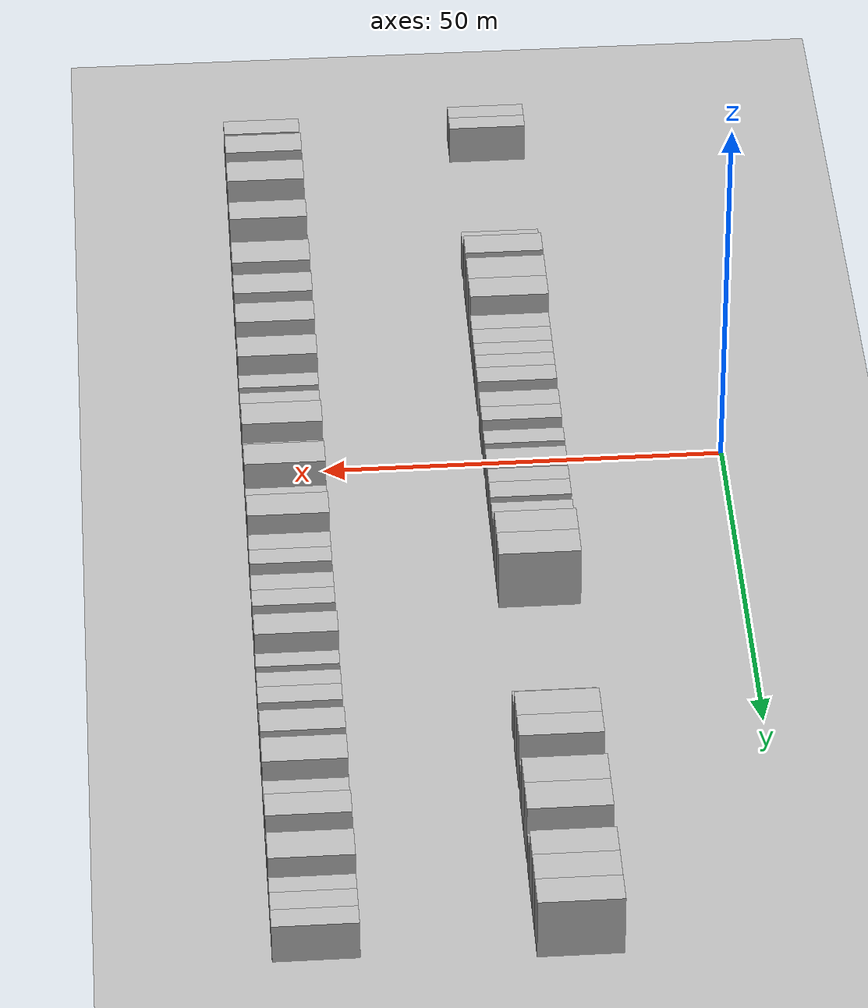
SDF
<sdf version="1.6">
 <world name="default">
  <include><name>ground_plane_1</name><uri>model://HANNAS_ground_plane</uri></include>
  <include>
   <name>ground_plane_2</name>
   <uri>model://HANNAS_ground_plane</uri>
   <pose>100 0 0  0 0 0</pose>
  </include>
  <model name="building_33">
   <static>1</static>
   <pose>25.0000 -66.7747 0 0.000000 0.000000 0.000000</pose>
   <link name="link">
    <pose>0 0 3.00 0 0 0</pose>
    <collision name="collision"><geometry><box><size>10.0000 2.4610 6.0000</size></box></geometry></collision>
    <visual name="visual">
     <cast_shadows>0</cast_shadows>
     <geometry><box><size>10.0000 2.4610 6.0000</size></box></geometry>
     <material>
      <script>
       <uri>model://HANNAS_wall/materials/scripts</uri>
       <uri>model://HANNAS_wall/materials/textures</uri>
       <name>vrc/HANNAS_wall</name>
      </script>
     </material>
    </visual>
   </link>
  </model>
  <model name="building_34">
   <static>1</static>
   <pose>25.0000 -64.3148 0 0.000000 0.000000 0.000000</pose>
   <link name="link">
    <pose>0 0 3.00 0 0 0</pose>
    <collision name="collision"><geometry><box><size>10.0000 2.4590 6.0000</size></box></geometry></collision>
    <visual name="visual">
     <cast_shadows>0</cast_shadows>
     <geometry><box><size>10.0000 2.4590 6.0000</size></box></geometry>
     <material>
      <script>
       <uri>model://HANNAS_wall/materials/scripts</uri>
       <uri>model://HANNAS_wall/materials/textures</uri>
       <name>vrc/HANNAS_wall</name>
      </script>
     </material>
    </visual>
   </link>
  </model>
  <model name="building_35">
   <static>1</static>
   <pose>25.0000 -38.9038 0 0.000000 0.000000 0.000000</pose>
   <link name="link">
    <pose>0 0 3.00 0 0 0</pose>
    <collision name="collision"><geometry><box><size>10.0000 2.7877 6.0000</size></box></geometry></collision>
    <visual name="visual">
     <cast_shadows>0</cast_shadows>
     <geometry><box><size>10.0000 2.7877 6.0000</size></box></geometry>
     <material>
      <script>
       <uri>model://HANNAS_wall/materials/scripts</uri>
       <uri>model://HANNAS_wall/materials/textures</uri>
       <name>vrc/HANNAS_wall</name>
      </script>
     </material>
    </visual>
   </link>
  </model>
  <model name="building_36">
   <static>1</static>
   <pose>25.0000 -33.6830 0 0.000000 0.000000 0.000000</pose>
   <link name="link">
    <pose>0 0 4.50 0 0 0</pose>
    <collision name="collision"><geometry><box><size>10.0000 3.6540 9.0000</size></box></geometry></collision>
    <visual name="visual">
     <cast_shadows>0</cast_shadows>
     <geometry><box><size>10.0000 3.6540 9.0000</size></box></geometry>
     <material>
      <script>
       <uri>model://HANNAS_wall/materials/scripts</uri>
       <uri>model://HANNAS_wall/materials/textures</uri>
       <name>vrc/HANNAS_wall</name>
      </script>
     </material>
    </visual>
   </link>
  </model>
  <model name="building_37">
   <static>1</static>
   <pose>25.0000 -28.6981 0 0.000000 0.000000 0.000000</pose>
   <link name="link">
    <pose>0 0 4.50 0 0 0</pose>
    <collision name="collision"><geometry><box><size>10.0000 4.3158 9.0000</size></box></geometry></collision>
    <visual name="visual">
     <cast_shadows>0</cast_shadows>
     <geometry><box><size>10.0000 4.3158 9.0000</size></box></geometry>
     <material>
      <script>
       <uri>model://HANNAS_wall/materials/scripts</uri>
       <uri>model://HANNAS_wall/materials/textures</uri>
       <name>vrc/HANNAS_wall</name>
      </script>
     </material>
    </visual>
   </link>
  </model>
  <model name="building_38">
   <static>1</static>
   <pose>25.0000 -24.6062 0 0.000000 0.000000 0.000000</pose>
   <link name="link">
    <pose>0 0 4.50 0 0 0</pose>
    <collision name="collision"><geometry><box><size>10.0000 3.8679 9.0000</size></box></geometry></collision>
    <visual name="visual">
     <cast_shadows>0</cast_shadows>
     <geometry><box><size>10.0000 3.8679 9.0000</size></box></geometry>
     <material>
      <script>
       <uri>model://HANNAS_wall/materials/scripts</uri>
       <uri>model://HANNAS_wall/materials/textures</uri>
       <name>vrc/HANNAS_wall</name>
      </script>
     </material>
    </visual>
   </link>
  </model>
  <model name="building_39">
   <static>1</static>
   <pose>25.0000 -21.2416 0 0.000000 0.000000 0.000000</pose>
   <link name="link">
    <pose>0 0 3.00 0 0 0</pose>
    <collision name="collision"><geometry><box><size>10.0000 2.8612 6.0000</size></box></geometry></collision>
    <visual name="visual">
     <cast_shadows>0</cast_shadows>
     <geometry><box><size>10.0000 2.8612 6.0000</size></box></geometry>
     <material>
      <script>
       <uri>model://HANNAS_wall/materials/scripts</uri>
       <uri>model://HANNAS_wall/materials/textures</uri>
       <name>vrc/HANNAS_wall</name>
      </script>
     </material>
    </visual>
   </link>
  </model>
  <model name="building_40">
   <static>1</static>
   <pose>25.0000 -18.3810 0 0.000000 0.000000 0.000000</pose>
   <link name="link">
    <pose>0 0 3.00 0 0 0</pose>
    <collision name="collision"><geometry><box><size>10.0000 2.8601 6.0000</size></box></geometry></collision>
    <visual name="visual">
     <cast_shadows>0</cast_shadows>
     <geometry><box><size>10.0000 2.8601 6.0000</size></box></geometry>
     <material>
      <script>
       <uri>model://HANNAS_wall/materials/scripts</uri>
       <uri>model://HANNAS_wall/materials/textures</uri>
       <name>vrc/HANNAS_wall</name>
      </script>
     </material>
    </visual>
   </link>
  </model>
  <model name="building_41">
   <static>1</static>
   <pose>25.0000 -15.7425 0 0.000000 0.000000 0.000000</pose>
   <link name="link">
    <pose>0 0 3.00 0 0 0</pose>
    <collision name="collision"><geometry><box><size>10.0000 2.4168 6.0000</size></box></geometry></collision>
    <visual name="visual">
     <cast_shadows>0</cast_shadows>
     <geometry><box><size>10.0000 2.4168 6.0000</size></box></geometry>
     <material>
      <script>
       <uri>model://HANNAS_wall/materials/scripts</uri>
       <uri>model://HANNAS_wall/materials/textures</uri>
       <name>vrc/HANNAS_wall</name>
      </script>
     </material>
    </visual>
   </link>
  </model>
  <model name="building_42">
   <static>1</static>
   <pose>25.0000 -13.2547 0 0.000000 0.000000 0.000000</pose>
   <link name="link">
    <pose>0 0 3.00 0 0 0</pose>
    <collision name="collision"><geometry><box><size>10.0000 2.5588 6.0000</size></box></geometry></collision>
    <visual name="visual">
     <cast_shadows>0</cast_shadows>
     <geometry><box><size>10.0000 2.5588 6.0000</size></box></geometry>
     <material>
      <script>
       <uri>model://HANNAS_wall/materials/scripts</uri>
       <uri>model://HANNAS_wall/materials/textures</uri>
       <name>vrc/HANNAS_wall</name>
      </script>
     </material>
    </visual>
   </link>
  </model>
  <model name="building_43">
   <static>1</static>
   <pose>25.0000 -10.5216 0 0.000000 0.000000 0.000000</pose>
   <link name="link">
    <pose>0 0 3.00 0 0 0</pose>
    <collision name="collision"><geometry><box><size>10.0000 2.9074 6.0000</size></box></geometry></collision>
    <visual name="visual">
     <cast_shadows>0</cast_shadows>
     <geometry><box><size>10.0000 2.9074 6.0000</size></box></geometry>
     <material>
      <script>
       <uri>model://HANNAS_wall/materials/scripts</uri>
       <uri>model://HANNAS_wall/materials/textures</uri>
       <name>vrc/HANNAS_wall</name>
      </script>
     </material>
    </visual>
   </link>
  </model>
  <model name="building_44">
   <static>1</static>
   <pose>25.0000 -5.5782 0 0.000000 0.000000 0.000000</pose>
   <link name="link">
    <pose>0 0 3.00 0 0 0</pose>
    <collision name="collision"><geometry><box><size>10.0000 2.9794 6.0000</size></box></geometry></collision>
    <visual name="visual">
     <cast_shadows>0</cast_shadows>
     <geometry><box><size>10.0000 2.9794 6.0000</size></box></geometry>
     <material>
      <script>
       <uri>model://HANNAS_wall/materials/scripts</uri>
       <uri>model://HANNAS_wall/materials/textures</uri>
       <name>vrc/HANNAS_wall</name>
      </script>
     </material>
    </visual>
   </link>
  </model>
  <model name="building_45">
   <static>1</static>
   <pose>25.0000 -2.7272 0 0.000000 0.000000 0.000000</pose>
   <link name="link">
    <pose>0 0 3.00 0 0 0</pose>
    <collision name="collision"><geometry><box><size>10.0000 2.7225 6.0000</size></box></geometry></collision>
    <visual name="visual">
     <cast_shadows>0</cast_shadows>
     <geometry><box><size>10.0000 2.7225 6.0000</size></box></geometry>
     <material>
      <script>
       <uri>model://HANNAS_wall/materials/scripts</uri>
       <uri>model://HANNAS_wall/materials/textures</uri>
       <name>vrc/HANNAS_wall</name>
      </script>
     </material>
    </visual>
   </link>
  </model>
  <model name="building_46">
   <static>1</static>
   <pose>25.0000 1.9381 0 0.000000 0.000000 0.000000</pose>
   <link name="link">
    <pose>0 0 3.00 0 0 0</pose>
    <collision name="collision"><geometry><box><size>10.0000 2.6081 6.0000</size></box></geometry></collision>
    <visual name="visual">
     <cast_shadows>0</cast_shadows>
     <geometry><box><size>10.0000 2.6081 6.0000</size></box></geometry>
     <material>
      <script>
       <uri>model://HANNAS_wall/materials/scripts</uri>
       <uri>model://HANNAS_wall/materials/textures</uri>
       <name>vrc/HANNAS_wall</name>
      </script>
     </material>
    </visual>
   </link>
  </model>
  <model name="building_47">
   <static>1</static>
   <pose>25.0000 5.6849 0 0.000000 0.000000 0.000000</pose>
   <link name="link">
    <pose>0 0 3.00 0 0 0</pose>
    <collision name="collision"><geometry><box><size>10.0000 2.8855 6.0000</size></box></geometry></collision>
    <visual name="visual">
     <cast_shadows>0</cast_shadows>
     <geometry><box><size>10.0000 2.8855 6.0000</size></box></geometry>
     <material>
      <script>
       <uri>model://HANNAS_wall/materials/scripts</uri>
       <uri>model://HANNAS_wall/materials/textures</uri>
       <name>vrc/HANNAS_wall</name>
      </script>
     </material>
    </visual>
   </link>
  </model>
  <model name="building_48">
   <static>1</static>
   <pose>25.0000 9.4006 0 0.000000 0.000000 0.000000</pose>
   <link name="link">
    <pose>0 0 3.00 0 0 0</pose>
    <collision name="collision"><geometry><box><size>10.0000 2.5460 6.0000</size></box></geometry></collision>
    <visual name="visual">
     <cast_shadows>0</cast_shadows>
     <geometry><box><size>10.0000 2.5460 6.0000</size></box></geometry>
     <material>
      <script>
       <uri>model://HANNAS_wall/materials/scripts</uri>
       <uri>model://HANNAS_wall/materials/textures</uri>
       <name>vrc/HANNAS_wall</name>
      </script>
     </material>
    </visual>
   </link>
  </model>
  <model name="building_49">
   <static>1</static>
   <pose>25.0000 12.1602 0 0.000000 0.000000 0.000000</pose>
   <link name="link">
    <pose>0 0 3.00 0 0 0</pose>
    <collision name="collision"><geometry><box><size>10.0000 2.9734 6.0000</size></box></geometry></collision>
    <visual name="visual">
     <cast_shadows>0</cast_shadows>
     <geometry><box><size>10.0000 2.9734 6.0000</size></box></geometry>
     <material>
      <script>
       <uri>model://HANNAS_wall/materials/scripts</uri>
       <uri>model://HANNAS_wall/materials/textures</uri>
       <name>vrc/HANNAS_wall</name>
      </script>
     </material>
    </visual>
   </link>
  </model>
  <model name="building_50">
   <static>1</static>
   <pose>25.0000 16.0455 0 0.000000 0.000000 0.000000</pose>
   <link name="link">
    <pose>0 0 3.00 0 0 0</pose>
    <collision name="collision"><geometry><box><size>10.0000 2.7973 6.0000</size></box></geometry></collision>
    <visual name="visual">
     <cast_shadows>0</cast_shadows>
     <geometry><box><size>10.0000 2.7973 6.0000</size></box></geometry>
     <material>
      <script>
       <uri>model://HANNAS_wall/materials/scripts</uri>
       <uri>model://HANNAS_wall/materials/textures</uri>
       <name>vrc/HANNAS_wall</name>
      </script>
     </material>
    </visual>
   </link>
  </model>
  <model name="building_51">
   <static>1</static>
   <pose>25.0000 18.7045 0 0.000000 0.000000 0.000000</pose>
   <link name="link">
    <pose>0 0 3.00 0 0 0</pose>
    <collision name="collision"><geometry><box><size>10.0000 2.5208 6.0000</size></box></geometry></collision>
    <visual name="visual">
     <cast_shadows>0</cast_shadows>
     <geometry><box><size>10.0000 2.5208 6.0000</size></box></geometry>
     <material>
      <script>
       <uri>model://HANNAS_wall/materials/scripts</uri>
       <uri>model://HANNAS_wall/materials/textures</uri>
       <name>vrc/HANNAS_wall</name>
      </script>
     </material>
    </visual>
   </link>
  </model>
  <model name="building_52">
   <static>1</static>
   <pose>25.0000 21.9266 0 0.000000 0.000000 0.000000</pose>
   <link name="link">
    <pose>0 0 4.50 0 0 0</pose>
    <collision name="collision"><geometry><box><size>10.0000 3.9233 9.0000</size></box></geometry></collision>
    <visual name="visual">
     <cast_shadows>0</cast_shadows>
     <geometry><box><size>10.0000 3.9233 9.0000</size></box></geometry>
     <material>
      <script>
       <uri>model://HANNAS_wall/materials/scripts</uri>
       <uri>model://HANNAS_wall/materials/textures</uri>
       <name>vrc/HANNAS_wall</name>
      </script>
     </material>
    </visual>
   </link>
  </model>
  <model name="building_53">
   <static>1</static>
   <pose>25.0000 25.9322 0 0.000000 0.000000 0.000000</pose>
   <link name="link">
    <pose>0 0 4.50 0 0 0</pose>
    <collision name="collision"><geometry><box><size>10.0000 4.0879 9.0000</size></box></geometry></collision>
    <visual name="visual">
     <cast_shadows>0</cast_shadows>
     <geometry><box><size>10.0000 4.0879 9.0000</size></box></geometry>
     <material>
      <script>
       <uri>model://HANNAS_wall/materials/scripts</uri>
       <uri>model://HANNAS_wall/materials/textures</uri>
       <name>vrc/HANNAS_wall</name>
      </script>
     </material>
    </visual>
   </link>
  </model>
  <model name="building_54">
   <static>1</static>
   <pose>25.0000 50.6213 0 0.000000 0.000000 0.000000</pose>
   <link name="link">
    <pose>0 0 3.00 0 0 0</pose>
    <collision name="collision"><geometry><box><size>10.0000 2.4302 6.0000</size></box></geometry></collision>
    <visual name="visual">
     <cast_shadows>0</cast_shadows>
     <geometry><box><size>10.0000 2.4302 6.0000</size></box></geometry>
     <material>
      <script>
       <uri>model://HANNAS_wall/materials/scripts</uri>
       <uri>model://HANNAS_wall/materials/textures</uri>
       <name>vrc/HANNAS_wall</name>
      </script>
     </material>
    </visual>
   </link>
  </model>
  <model name="building_55">
   <static>1</static>
   <pose>25.0000 54.8853 0 0.000000 0.000000 0.000000</pose>
   <link name="link">
    <pose>0 0 4.50 0 0 0</pose>
    <collision name="collision"><geometry><box><size>10.0000 4.0978 9.0000</size></box></geometry></collision>
    <visual name="visual">
     <cast_shadows>0</cast_shadows>
     <geometry><box><size>10.0000 4.0978 9.0000</size></box></geometry>
     <material>
      <script>
       <uri>model://HANNAS_wall/materials/scripts</uri>
       <uri>model://HANNAS_wall/materials/textures</uri>
       <name>vrc/HANNAS_wall</name>
      </script>
     </material>
    </visual>
   </link>
  </model>
  <model name="building_56">
   <static>1</static>
   <pose>25.0000 58.7372 0 0.000000 0.000000 0.000000</pose>
   <link name="link">
    <pose>0 0 4.50 0 0 0</pose>
    <collision name="collision"><geometry><box><size>10.0000 3.6061 9.0000</size></box></geometry></collision>
    <visual name="visual">
     <cast_shadows>0</cast_shadows>
     <geometry><box><size>10.0000 3.6061 9.0000</size></box></geometry>
     <material>
      <script>
       <uri>model://HANNAS_wall/materials/scripts</uri>
       <uri>model://HANNAS_wall/materials/textures</uri>
       <name>vrc/HANNAS_wall</name>
      </script>
     </material>
    </visual>
   </link>
  </model>
  <model name="building_57">
   <static>1</static>
   <pose>25.0000 62.9265 0 0.000000 0.000000 0.000000</pose>
   <link name="link">
    <pose>0 0 3.00 0 0 0</pose>
    <collision name="collision"><geometry><box><size>10.0000 2.7724 6.0000</size></box></geometry></collision>
    <visual name="visual">
     <cast_shadows>0</cast_shadows>
     <geometry><box><size>10.0000 2.7724 6.0000</size></box></geometry>
     <material>
      <script>
       <uri>model://HANNAS_wall/materials/scripts</uri>
       <uri>model://HANNAS_wall/materials/textures</uri>
       <name>vrc/HANNAS_wall</name>
      </script>
     </material>
    </visual>
   </link>
  </model>
  <model name="building_58">
   <static>1</static>
   <pose>25.0000 66.4284 0 0.000000 0.000000 0.000000</pose>
   <link name="link">
    <pose>0 0 4.50 0 0 0</pose>
    <collision name="collision"><geometry><box><size>10.0000 4.2313 9.0000</size></box></geometry></collision>
    <visual name="visual">
     <cast_shadows>0</cast_shadows>
     <geometry><box><size>10.0000 4.2313 9.0000</size></box></geometry>
     <material>
      <script>
       <uri>model://HANNAS_wall/materials/scripts</uri>
       <uri>model://HANNAS_wall/materials/textures</uri>
       <name>vrc/HANNAS_wall</name>
      </script>
     </material>
    </visual>
   </link>
  </model>
  <model name="building_59">
   <static>1</static>
   <pose>25.0000 70.7863 0 0.000000 0.000000 0.000000</pose>
   <link name="link">
    <pose>0 0 4.50 0 0 0</pose>
    <collision name="collision"><geometry><box><size>10.0000 4.4846 9.0000</size></box></geometry></collision>
    <visual name="visual">
     <cast_shadows>0</cast_shadows>
     <geometry><box><size>10.0000 4.4846 9.0000</size></box></geometry>
     <material>
      <script>
       <uri>model://HANNAS_wall/materials/scripts</uri>
       <uri>model://HANNAS_wall/materials/textures</uri>
       <name>vrc/HANNAS_wall</name>
      </script>
     </material>
    </visual>
   </link>
  </model>
  <model name="building_60">
   <static>1</static>
   <pose>25.0000 75.3295 0 0.000000 0.000000 0.000000</pose>
   <link name="link">
    <pose>0 0 3.00 0 0 0</pose>
    <collision name="collision"><geometry><box><size>10.0000 2.6019 6.0000</size></box></geometry></collision>
    <visual name="visual">
     <cast_shadows>0</cast_shadows>
     <geometry><box><size>10.0000 2.6019 6.0000</size></box></geometry>
     <material>
      <script>
       <uri>model://HANNAS_wall/materials/scripts</uri>
       <uri>model://HANNAS_wall/materials/textures</uri>
       <name>vrc/HANNAS_wall</name>
      </script>
     </material>
    </visual>
   </link>
  </model>
  <model name="building_61">
   <static>1</static>
   <pose>25.0000 78.6148 0 0.000000 0.000000 0.000000</pose>
   <link name="link">
    <pose>0 0 4.50 0 0 0</pose>
    <collision name="collision"><geometry><box><size>10.0000 3.9686 9.0000</size></box></geometry></collision>
    <visual name="visual">
     <cast_shadows>0</cast_shadows>
     <geometry><box><size>10.0000 3.9686 9.0000</size></box></geometry>
     <material>
      <script>
       <uri>model://HANNAS_wall/materials/scripts</uri>
       <uri>model://HANNAS_wall/materials/textures</uri>
       <name>vrc/HANNAS_wall</name>
      </script>
     </material>
    </visual>
   </link>
  </model>
  <model name="building_62">
   <static>1</static>
   <pose>25.0000 82.6058 0 0.000000 0.000000 0.000000</pose>
   <link name="link">
    <pose>0 0 4.50 0 0 0</pose>
    <collision name="collision"><geometry><box><size>10.0000 4.0133 9.0000</size></box></geometry></collision>
    <visual name="visual">
     <cast_shadows>0</cast_shadows>
     <geometry><box><size>10.0000 4.0133 9.0000</size></box></geometry>
     <material>
      <script>
       <uri>model://HANNAS_wall/materials/scripts</uri>
       <uri>model://HANNAS_wall/materials/textures</uri>
       <name>vrc/HANNAS_wall</name>
      </script>
     </material>
    </visual>
   </link>
  </model>
  <model name="building_63">
   <static>1</static>
   <pose>25.0000 86.5695 0 0.000000 0.000000 0.000000</pose>
   <link name="link">
    <pose>0 0 4.50 0 0 0</pose>
    <collision name="collision"><geometry><box><size>10.0000 3.9142 9.0000</size></box></geometry></collision>
    <visual name="visual">
     <cast_shadows>0</cast_shadows>
     <geometry><box><size>10.0000 3.9142 9.0000</size></box></geometry>
     <material>
      <script>
       <uri>model://HANNAS_wall/materials/scripts</uri>
       <uri>model://HANNAS_wall/materials/textures</uri>
       <name>vrc/HANNAS_wall</name>
      </script>
     </material>
    </visual>
   </link>
  </model>
  <model name="building_140">
   <static>1</static>
   <pose>55.0000 -65.3273 0 0.000000 0.000000 0.000000</pose>
   <link name="link">
    <pose>0 0 3.00 0 0 0</pose>
    <collision name="collision"><geometry><box><size>10.0000 2.9412 6.0000</size></box></geometry></collision>
    <visual name="visual">
     <cast_shadows>0</cast_shadows>
     <geometry><box><size>10.0000 2.9412 6.0000</size></box></geometry>
     <material>
      <script>
       <uri>model://HANNAS_wall/materials/scripts</uri>
       <uri>model://HANNAS_wall/materials/textures</uri>
       <name>vrc/HANNAS_wall</name>
      </script>
     </material>
    </visual>
   </link>
  </model>
  <model name="building_141">
   <static>1</static>
   <pose>55.0000 -60.6528 0 0.000000 0.000000 0.000000</pose>
   <link name="link">
    <pose>0 0 3.00 0 0 0</pose>
    <collision name="collision"><geometry><box><size>10.0000 2.4078 6.0000</size></box></geometry></collision>
    <visual name="visual">
     <cast_shadows>0</cast_shadows>
     <geometry><box><size>10.0000 2.4078 6.0000</size></box></geometry>
     <material>
      <script>
       <uri>model://HANNAS_wall/materials/scripts</uri>
       <uri>model://HANNAS_wall/materials/textures</uri>
       <name>vrc/HANNAS_wall</name>
      </script>
     </material>
    </visual>
   </link>
  </model>
  <model name="building_142">
   <static>1</static>
   <pose>55.0000 -57.5523 0 0.000000 0.000000 0.000000</pose>
   <link name="link">
    <pose>0 0 4.50 0 0 0</pose>
    <collision name="collision"><geometry><box><size>10.0000 3.7933 9.0000</size></box></geometry></collision>
    <visual name="visual">
     <cast_shadows>0</cast_shadows>
     <geometry><box><size>10.0000 3.7933 9.0000</size></box></geometry>
     <material>
      <script>
       <uri>model://HANNAS_wall/materials/scripts</uri>
       <uri>model://HANNAS_wall/materials/textures</uri>
       <name>vrc/HANNAS_wall</name>
      </script>
     </material>
    </visual>
   </link>
  </model>
  <model name="building_143">
   <static>1</static>
   <pose>55.0000 -51.5220 0 0.000000 0.000000 0.000000</pose>
   <link name="link">
    <pose>0 0 4.50 0 0 0</pose>
    <collision name="collision"><geometry><box><size>10.0000 4.2673 9.0000</size></box></geometry></collision>
    <visual name="visual">
     <cast_shadows>0</cast_shadows>
     <geometry><box><size>10.0000 4.2673 9.0000</size></box></geometry>
     <material>
      <script>
       <uri>model://HANNAS_wall/materials/scripts</uri>
       <uri>model://HANNAS_wall/materials/textures</uri>
       <name>vrc/HANNAS_wall</name>
      </script>
     </material>
    </visual>
   </link>
  </model>
  <model name="building_144">
   <static>1</static>
   <pose>55.0000 -46.1477 0 0.000000 0.000000 0.000000</pose>
   <link name="link">
    <pose>0 0 3.00 0 0 0</pose>
    <collision name="collision"><geometry><box><size>10.0000 2.4814 6.0000</size></box></geometry></collision>
    <visual name="visual">
     <cast_shadows>0</cast_shadows>
     <geometry><box><size>10.0000 2.4814 6.0000</size></box></geometry>
     <material>
      <script>
       <uri>model://HANNAS_wall/materials/scripts</uri>
       <uri>model://HANNAS_wall/materials/textures</uri>
       <name>vrc/HANNAS_wall</name>
      </script>
     </material>
    </visual>
   </link>
  </model>
  <model name="building_145">
   <static>1</static>
   <pose>55.0000 -43.0397 0 0.000000 0.000000 0.000000</pose>
   <link name="link">
    <pose>0 0 4.50 0 0 0</pose>
    <collision name="collision"><geometry><box><size>10.0000 3.7345 9.0000</size></box></geometry></collision>
    <visual name="visual">
     <cast_shadows>0</cast_shadows>
     <geometry><box><size>10.0000 3.7345 9.0000</size></box></geometry>
     <material>
      <script>
       <uri>model://HANNAS_wall/materials/scripts</uri>
       <uri>model://HANNAS_wall/materials/textures</uri>
       <name>vrc/HANNAS_wall</name>
      </script>
     </material>
    </visual>
   </link>
  </model>
  <model name="building_146">
   <static>1</static>
   <pose>55.0000 -37.7291 0 0.000000 0.000000 0.000000</pose>
   <link name="link">
    <pose>0 0 3.00 0 0 0</pose>
    <collision name="collision"><geometry><box><size>10.0000 2.8868 6.0000</size></box></geometry></collision>
    <visual name="visual">
     <cast_shadows>0</cast_shadows>
     <geometry><box><size>10.0000 2.8868 6.0000</size></box></geometry>
     <material>
      <script>
       <uri>model://HANNAS_wall/materials/scripts</uri>
       <uri>model://HANNAS_wall/materials/textures</uri>
       <name>vrc/HANNAS_wall</name>
      </script>
     </material>
    </visual>
   </link>
  </model>
  <model name="building_147">
   <static>1</static>
   <pose>55.0000 -34.0824 0 0.000000 0.000000 0.000000</pose>
   <link name="link">
    <pose>0 0 4.50 0 0 0</pose>
    <collision name="collision"><geometry><box><size>10.0000 4.4066 9.0000</size></box></geometry></collision>
    <visual name="visual">
     <cast_shadows>0</cast_shadows>
     <geometry><box><size>10.0000 4.4066 9.0000</size></box></geometry>
     <material>
      <script>
       <uri>model://HANNAS_wall/materials/scripts</uri>
       <uri>model://HANNAS_wall/materials/textures</uri>
       <name>vrc/HANNAS_wall</name>
      </script>
     </material>
    </visual>
   </link>
  </model>
  <model name="building_148">
   <static>1</static>
   <pose>55.0000 -30.6467 0 0.000000 0.000000 0.000000</pose>
   <link name="link">
    <pose>0 0 3.00 0 0 0</pose>
    <collision name="collision"><geometry><box><size>10.0000 2.4649 6.0000</size></box></geometry></collision>
    <visual name="visual">
     <cast_shadows>0</cast_shadows>
     <geometry><box><size>10.0000 2.4649 6.0000</size></box></geometry>
     <material>
      <script>
       <uri>model://HANNAS_wall/materials/scripts</uri>
       <uri>model://HANNAS_wall/materials/textures</uri>
       <name>vrc/HANNAS_wall</name>
      </script>
     </material>
    </visual>
   </link>
  </model>
  <model name="building_149">
   <static>1</static>
   <pose>55.0000 -27.4281 0 0.000000 0.000000 0.000000</pose>
   <link name="link">
    <pose>0 0 4.50 0 0 0</pose>
    <collision name="collision"><geometry><box><size>10.0000 3.9722 9.0000</size></box></geometry></collision>
    <visual name="visual">
     <cast_shadows>0</cast_shadows>
     <geometry><box><size>10.0000 3.9722 9.0000</size></box></geometry>
     <material>
      <script>
       <uri>model://HANNAS_wall/materials/scripts</uri>
       <uri>model://HANNAS_wall/materials/textures</uri>
       <name>vrc/HANNAS_wall</name>
      </script>
     </material>
    </visual>
   </link>
  </model>
  <model name="building_150">
   <static>1</static>
   <pose>55.0000 -21.4527 0 0.000000 0.000000 0.000000</pose>
   <link name="link">
    <pose>0 0 4.50 0 0 0</pose>
    <collision name="collision"><geometry><box><size>10.0000 3.9786 9.0000</size></box></geometry></collision>
    <visual name="visual">
     <cast_shadows>0</cast_shadows>
     <geometry><box><size>10.0000 3.9786 9.0000</size></box></geometry>
     <material>
      <script>
       <uri>model://HANNAS_wall/materials/scripts</uri>
       <uri>model://HANNAS_wall/materials/textures</uri>
       <name>vrc/HANNAS_wall</name>
      </script>
     </material>
    </visual>
   </link>
  </model>
  <model name="building_151">
   <static>1</static>
   <pose>55.0000 -17.9758 0 0.000000 0.000000 0.000000</pose>
   <link name="link">
    <pose>0 0 3.00 0 0 0</pose>
    <collision name="collision"><geometry><box><size>10.0000 2.9753 6.0000</size></box></geometry></collision>
    <visual name="visual">
     <cast_shadows>0</cast_shadows>
     <geometry><box><size>10.0000 2.9753 6.0000</size></box></geometry>
     <material>
      <script>
       <uri>model://HANNAS_wall/materials/scripts</uri>
       <uri>model://HANNAS_wall/materials/textures</uri>
       <name>vrc/HANNAS_wall</name>
      </script>
     </material>
    </visual>
   </link>
  </model>
  <model name="building_152">
   <static>1</static>
   <pose>55.0000 -14.4948 0 0.000000 0.000000 0.000000</pose>
   <link name="link">
    <pose>0 0 4.50 0 0 0</pose>
    <collision name="collision"><geometry><box><size>10.0000 3.9866 9.0000</size></box></geometry></collision>
    <visual name="visual">
     <cast_shadows>0</cast_shadows>
     <geometry><box><size>10.0000 3.9866 9.0000</size></box></geometry>
     <material>
      <script>
       <uri>model://HANNAS_wall/materials/scripts</uri>
       <uri>model://HANNAS_wall/materials/textures</uri>
       <name>vrc/HANNAS_wall</name>
      </script>
     </material>
    </visual>
   </link>
  </model>
  <model name="building_153">
   <static>1</static>
   <pose>55.0000 -11.2010 0 0.000000 0.000000 0.000000</pose>
   <link name="link">
    <pose>0 0 3.00 0 0 0</pose>
    <collision name="collision"><geometry><box><size>10.0000 2.6010 6.0000</size></box></geometry></collision>
    <visual name="visual">
     <cast_shadows>0</cast_shadows>
     <geometry><box><size>10.0000 2.6010 6.0000</size></box></geometry>
     <material>
      <script>
       <uri>model://HANNAS_wall/materials/scripts</uri>
       <uri>model://HANNAS_wall/materials/textures</uri>
       <name>vrc/HANNAS_wall</name>
      </script>
     </material>
    </visual>
   </link>
  </model>
  <model name="building_154">
   <static>1</static>
   <pose>55.0000 -7.4275 0 0.000000 0.000000 0.000000</pose>
   <link name="link">
    <pose>0 0 3.00 0 0 0</pose>
    <collision name="collision"><geometry><box><size>10.0000 2.9459 6.0000</size></box></geometry></collision>
    <visual name="visual">
     <cast_shadows>0</cast_shadows>
     <geometry><box><size>10.0000 2.9459 6.0000</size></box></geometry>
     <material>
      <script>
       <uri>model://HANNAS_wall/materials/scripts</uri>
       <uri>model://HANNAS_wall/materials/textures</uri>
       <name>vrc/HANNAS_wall</name>
      </script>
     </material>
    </visual>
   </link>
  </model>
  <model name="building_155">
   <static>1</static>
   <pose>55.0000 -4.5272 0 0.000000 0.000000 0.000000</pose>
   <link name="link">
    <pose>0 0 3.00 0 0 0</pose>
    <collision name="collision"><geometry><box><size>10.0000 2.8549 6.0000</size></box></geometry></collision>
    <visual name="visual">
     <cast_shadows>0</cast_shadows>
     <geometry><box><size>10.0000 2.8549 6.0000</size></box></geometry>
     <material>
      <script>
       <uri>model://HANNAS_wall/materials/scripts</uri>
       <uri>model://HANNAS_wall/materials/textures</uri>
       <name>vrc/HANNAS_wall</name>
      </script>
     </material>
    </visual>
   </link>
  </model>
  <model name="building_156">
   <static>1</static>
   <pose>55.0000 -1.0427 0 0.000000 0.000000 0.000000</pose>
   <link name="link">
    <pose>0 0 4.50 0 0 0</pose>
    <collision name="collision"><geometry><box><size>10.0000 4.1139 9.0000</size></box></geometry></collision>
    <visual name="visual">
     <cast_shadows>0</cast_shadows>
     <geometry><box><size>10.0000 4.1139 9.0000</size></box></geometry>
     <material>
      <script>
       <uri>model://HANNAS_wall/materials/scripts</uri>
       <uri>model://HANNAS_wall/materials/textures</uri>
       <name>vrc/HANNAS_wall</name>
      </script>
     </material>
    </visual>
   </link>
  </model>
  <model name="building_157">
   <static>1</static>
   <pose>55.0000 2.4739 0 0.000000 0.000000 0.000000</pose>
   <link name="link">
    <pose>0 0 3.00 0 0 0</pose>
    <collision name="collision"><geometry><box><size>10.0000 2.9193 6.0000</size></box></geometry></collision>
    <visual name="visual">
     <cast_shadows>0</cast_shadows>
     <geometry><box><size>10.0000 2.9193 6.0000</size></box></geometry>
     <material>
      <script>
       <uri>model://HANNAS_wall/materials/scripts</uri>
       <uri>model://HANNAS_wall/materials/textures</uri>
       <name>vrc/HANNAS_wall</name>
      </script>
     </material>
    </visual>
   </link>
  </model>
  <model name="building_158">
   <static>1</static>
   <pose>55.0000 6.8937 0 0.000000 0.000000 0.000000</pose>
   <link name="link">
    <pose>0 0 4.50 0 0 0</pose>
    <collision name="collision"><geometry><box><size>10.0000 3.9205 9.0000</size></box></geometry></collision>
    <visual name="visual">
     <cast_shadows>0</cast_shadows>
     <geometry><box><size>10.0000 3.9205 9.0000</size></box></geometry>
     <material>
      <script>
       <uri>model://HANNAS_wall/materials/scripts</uri>
       <uri>model://HANNAS_wall/materials/textures</uri>
       <name>vrc/HANNAS_wall</name>
      </script>
     </material>
    </visual>
   </link>
  </model>
  <model name="building_159">
   <static>1</static>
   <pose>55.0000 11.2931 0 0.000000 0.000000 0.000000</pose>
   <link name="link">
    <pose>0 0 3.00 0 0 0</pose>
    <collision name="collision"><geometry><box><size>10.0000 2.8783 6.0000</size></box></geometry></collision>
    <visual name="visual">
     <cast_shadows>0</cast_shadows>
     <geometry><box><size>10.0000 2.8783 6.0000</size></box></geometry>
     <material>
      <script>
       <uri>model://HANNAS_wall/materials/scripts</uri>
       <uri>model://HANNAS_wall/materials/textures</uri>
       <name>vrc/HANNAS_wall</name>
      </script>
     </material>
    </visual>
   </link>
  </model>
  <model name="building_160">
   <static>1</static>
   <pose>55.0000 16.7106 0 0.000000 0.000000 0.000000</pose>
   <link name="link">
    <pose>0 0 4.50 0 0 0</pose>
    <collision name="collision"><geometry><box><size>10.0000 3.9566 9.0000</size></box></geometry></collision>
    <visual name="visual">
     <cast_shadows>0</cast_shadows>
     <geometry><box><size>10.0000 3.9566 9.0000</size></box></geometry>
     <material>
      <script>
       <uri>model://HANNAS_wall/materials/scripts</uri>
       <uri>model://HANNAS_wall/materials/textures</uri>
       <name>vrc/HANNAS_wall</name>
      </script>
     </material>
    </visual>
   </link>
  </model>
  <model name="building_161">
   <static>1</static>
   <pose>55.0000 20.1104 0 0.000000 0.000000 0.000000</pose>
   <link name="link">
    <pose>0 0 3.00 0 0 0</pose>
    <collision name="collision"><geometry><box><size>10.0000 2.8430 6.0000</size></box></geometry></collision>
    <visual name="visual">
     <cast_shadows>0</cast_shadows>
     <geometry><box><size>10.0000 2.8430 6.0000</size></box></geometry>
     <material>
      <script>
       <uri>model://HANNAS_wall/materials/scripts</uri>
       <uri>model://HANNAS_wall/materials/textures</uri>
       <name>vrc/HANNAS_wall</name>
      </script>
     </material>
    </visual>
   </link>
  </model>
  <model name="building_162">
   <static>1</static>
   <pose>55.0000 22.8749 0 0.000000 0.000000 0.000000</pose>
   <link name="link">
    <pose>0 0 3.00 0 0 0</pose>
    <collision name="collision"><geometry><box><size>10.0000 2.6861 6.0000</size></box></geometry></collision>
    <visual name="visual">
     <cast_shadows>0</cast_shadows>
     <geometry><box><size>10.0000 2.6861 6.0000</size></box></geometry>
     <material>
      <script>
       <uri>model://HANNAS_wall/materials/scripts</uri>
       <uri>model://HANNAS_wall/materials/textures</uri>
       <name>vrc/HANNAS_wall</name>
      </script>
     </material>
    </visual>
   </link>
  </model>
  <model name="building_163">
   <static>1</static>
   <pose>55.0000 27.6368 0 0.000000 0.000000 0.000000</pose>
   <link name="link">
    <pose>0 0 3.00 0 0 0</pose>
    <collision name="collision"><geometry><box><size>10.0000 2.8376 6.0000</size></box></geometry></collision>
    <visual name="visual">
     <cast_shadows>0</cast_shadows>
     <geometry><box><size>10.0000 2.8376 6.0000</size></box></geometry>
     <material>
      <script>
       <uri>model://HANNAS_wall/materials/scripts</uri>
       <uri>model://HANNAS_wall/materials/textures</uri>
       <name>vrc/HANNAS_wall</name>
      </script>
     </material>
    </visual>
   </link>
  </model>
  <model name="building_164">
   <static>1</static>
   <pose>55.0000 30.5134 0 0.000000 0.000000 0.000000</pose>
   <link name="link">
    <pose>0 0 3.00 0 0 0</pose>
    <collision name="collision"><geometry><box><size>10.0000 2.9156 6.0000</size></box></geometry></collision>
    <visual name="visual">
     <cast_shadows>0</cast_shadows>
     <geometry><box><size>10.0000 2.9156 6.0000</size></box></geometry>
     <material>
      <script>
       <uri>model://HANNAS_wall/materials/scripts</uri>
       <uri>model://HANNAS_wall/materials/textures</uri>
       <name>vrc/HANNAS_wall</name>
      </script>
     </material>
    </visual>
   </link>
  </model>
  <model name="building_165">
   <static>1</static>
   <pose>55.0000 35.4434 0 0.000000 0.000000 0.000000</pose>
   <link name="link">
    <pose>0 0 3.00 0 0 0</pose>
    <collision name="collision"><geometry><box><size>10.0000 2.9445 6.0000</size></box></geometry></collision>
    <visual name="visual">
     <cast_shadows>0</cast_shadows>
     <geometry><box><size>10.0000 2.9445 6.0000</size></box></geometry>
     <material>
      <script>
       <uri>model://HANNAS_wall/materials/scripts</uri>
       <uri>model://HANNAS_wall/materials/textures</uri>
       <name>vrc/HANNAS_wall</name>
      </script>
     </material>
    </visual>
   </link>
  </model>
  <model name="building_166">
   <static>1</static>
   <pose>55.0000 38.7606 0 0.000000 0.000000 0.000000</pose>
   <link name="link">
    <pose>0 0 4.50 0 0 0</pose>
    <collision name="collision"><geometry><box><size>10.0000 3.6899 9.0000</size></box></geometry></collision>
    <visual name="visual">
     <cast_shadows>0</cast_shadows>
     <geometry><box><size>10.0000 3.6899 9.0000</size></box></geometry>
     <material>
      <script>
       <uri>model://HANNAS_wall/materials/scripts</uri>
       <uri>model://HANNAS_wall/materials/textures</uri>
       <name>vrc/HANNAS_wall</name>
      </script>
     </material>
    </visual>
   </link>
  </model>
  <model name="building_167">
   <static>1</static>
   <pose>55.0000 41.8161 0 0.000000 0.000000 0.000000</pose>
   <link name="link">
    <pose>0 0 3.00 0 0 0</pose>
    <collision name="collision"><geometry><box><size>10.0000 2.4211 6.0000</size></box></geometry></collision>
    <visual name="visual">
     <cast_shadows>0</cast_shadows>
     <geometry><box><size>10.0000 2.4211 6.0000</size></box></geometry>
     <material>
      <script>
       <uri>model://HANNAS_wall/materials/scripts</uri>
       <uri>model://HANNAS_wall/materials/textures</uri>
       <name>vrc/HANNAS_wall</name>
      </script>
     </material>
    </visual>
   </link>
  </model>
  <model name="building_168">
   <static>1</static>
   <pose>55.0000 45.3012 0 0.000000 0.000000 0.000000</pose>
   <link name="link">
    <pose>0 0 3.00 0 0 0</pose>
    <collision name="collision"><geometry><box><size>10.0000 2.5491 6.0000</size></box></geometry></collision>
    <visual name="visual">
     <cast_shadows>0</cast_shadows>
     <geometry><box><size>10.0000 2.5491 6.0000</size></box></geometry>
     <material>
      <script>
       <uri>model://HANNAS_wall/materials/scripts</uri>
       <uri>model://HANNAS_wall/materials/textures</uri>
       <name>vrc/HANNAS_wall</name>
      </script>
     </material>
    </visual>
   </link>
  </model>
  <model name="building_169">
   <static>1</static>
   <pose>55.0000 48.0136 0 0.000000 0.000000 0.000000</pose>
   <link name="link">
    <pose>0 0 3.00 0 0 0</pose>
    <collision name="collision"><geometry><box><size>10.0000 2.8757 6.0000</size></box></geometry></collision>
    <visual name="visual">
     <cast_shadows>0</cast_shadows>
     <geometry><box><size>10.0000 2.8757 6.0000</size></box></geometry>
     <material>
      <script>
       <uri>model://HANNAS_wall/materials/scripts</uri>
       <uri>model://HANNAS_wall/materials/textures</uri>
       <name>vrc/HANNAS_wall</name>
      </script>
     </material>
    </visual>
   </link>
  </model>
  <model name="building_170">
   <static>1</static>
   <pose>55.0000 52.7436 0 0.000000 0.000000 0.000000</pose>
   <link name="link">
    <pose>0 0 3.00 0 0 0</pose>
    <collision name="collision"><geometry><box><size>10.0000 2.5844 6.0000</size></box></geometry></collision>
    <visual name="visual">
     <cast_shadows>0</cast_shadows>
     <geometry><box><size>10.0000 2.5844 6.0000</size></box></geometry>
     <material>
      <script>
       <uri>model://HANNAS_wall/materials/scripts</uri>
       <uri>model://HANNAS_wall/materials/textures</uri>
       <name>vrc/HANNAS_wall</name>
      </script>
     </material>
    </visual>
   </link>
  </model>
  <model name="building_171">
   <static>1</static>
   <pose>55.0000 55.9027 0 0.000000 0.000000 0.000000</pose>
   <link name="link">
    <pose>0 0 4.50 0 0 0</pose>
    <collision name="collision"><geometry><box><size>10.0000 3.7336 9.0000</size></box></geometry></collision>
    <visual name="visual">
     <cast_shadows>0</cast_shadows>
     <geometry><box><size>10.0000 3.7336 9.0000</size></box></geometry>
     <material>
      <script>
       <uri>model://HANNAS_wall/materials/scripts</uri>
       <uri>model://HANNAS_wall/materials/textures</uri>
       <name>vrc/HANNAS_wall</name>
      </script>
     </material>
    </visual>
   </link>
  </model>
  <model name="building_172">
   <static>1</static>
   <pose>55.0000 60.8673 0 0.000000 0.000000 0.000000</pose>
   <link name="link">
    <pose>0 0 4.50 0 0 0</pose>
    <collision name="collision"><geometry><box><size>10.0000 4.1956 9.0000</size></box></geometry></collision>
    <visual name="visual">
     <cast_shadows>0</cast_shadows>
     <geometry><box><size>10.0000 4.1956 9.0000</size></box></geometry>
     <material>
      <script>
       <uri>model://HANNAS_wall/materials/scripts</uri>
       <uri>model://HANNAS_wall/materials/textures</uri>
       <name>vrc/HANNAS_wall</name>
      </script>
     </material>
    </visual>
   </link>
  </model>
  <model name="building_173">
   <static>1</static>
   <pose>55.0000 64.3036 0 0.000000 0.000000 0.000000</pose>
   <link name="link">
    <pose>0 0 3.00 0 0 0</pose>
    <collision name="collision"><geometry><box><size>10.0000 2.6770 6.0000</size></box></geometry></collision>
    <visual name="visual">
     <cast_shadows>0</cast_shadows>
     <geometry><box><size>10.0000 2.6770 6.0000</size></box></geometry>
     <material>
      <script>
       <uri>model://HANNAS_wall/materials/scripts</uri>
       <uri>model://HANNAS_wall/materials/textures</uri>
       <name>vrc/HANNAS_wall</name>
      </script>
     </material>
    </visual>
   </link>
  </model>
  <model name="building_174">
   <static>1</static>
   <pose>55.0000 67.0282 0 0.000000 0.000000 0.000000</pose>
   <link name="link">
    <pose>0 0 3.00 0 0 0</pose>
    <collision name="collision"><geometry><box><size>10.0000 2.7721 6.0000</size></box></geometry></collision>
    <visual name="visual">
     <cast_shadows>0</cast_shadows>
     <geometry><box><size>10.0000 2.7721 6.0000</size></box></geometry>
     <material>
      <script>
       <uri>model://HANNAS_wall/materials/scripts</uri>
       <uri>model://HANNAS_wall/materials/textures</uri>
       <name>vrc/HANNAS_wall</name>
      </script>
     </material>
    </visual>
   </link>
  </model>
  <model name="building_175">
   <static>1</static>
   <pose>55.0000 70.2536 0 0.000000 0.000000 0.000000</pose>
   <link name="link">
    <pose>0 0 4.50 0 0 0</pose>
    <collision name="collision"><geometry><box><size>10.0000 3.6788 9.0000</size></box></geometry></collision>
    <visual name="visual">
     <cast_shadows>0</cast_shadows>
     <geometry><box><size>10.0000 3.6788 9.0000</size></box></geometry>
     <material>
      <script>
       <uri>model://HANNAS_wall/materials/scripts</uri>
       <uri>model://HANNAS_wall/materials/textures</uri>
       <name>vrc/HANNAS_wall</name>
      </script>
     </material>
    </visual>
   </link>
  </model>
  <model name="building_176">
   <static>1</static>
   <pose>55.0000 73.4843 0 0.000000 0.000000 0.000000</pose>
   <link name="link">
    <pose>0 0 3.00 0 0 0</pose>
    <collision name="collision"><geometry><box><size>10.0000 2.7827 6.0000</size></box></geometry></collision>
    <visual name="visual">
     <cast_shadows>0</cast_shadows>
     <geometry><box><size>10.0000 2.7827 6.0000</size></box></geometry>
     <material>
      <script>
       <uri>model://HANNAS_wall/materials/scripts</uri>
       <uri>model://HANNAS_wall/materials/textures</uri>
       <name>vrc/HANNAS_wall</name>
      </script>
     </material>
    </visual>
   </link>
  </model>
  <model name="building_177">
   <static>1</static>
   <pose>55.0000 77.0332 0 0.000000 0.000000 0.000000</pose>
   <link name="link">
    <pose>0 0 4.50 0 0 0</pose>
    <collision name="collision"><geometry><box><size>10.0000 4.3151 9.0000</size></box></geometry></collision>
    <visual name="visual">
     <cast_shadows>0</cast_shadows>
     <geometry><box><size>10.0000 4.3151 9.0000</size></box></geometry>
     <material>
      <script>
       <uri>model://HANNAS_wall/materials/scripts</uri>
       <uri>model://HANNAS_wall/materials/textures</uri>
       <name>vrc/HANNAS_wall</name>
      </script>
     </material>
    </visual>
   </link>
  </model>
  <model name="building_178">
   <static>1</static>
   <pose>55.0000 80.4063 0 0.000000 0.000000 0.000000</pose>
   <link name="link">
    <pose>0 0 3.00 0 0 0</pose>
    <collision name="collision"><geometry><box><size>10.0000 2.4310 6.0000</size></box></geometry></collision>
    <visual name="visual">
     <cast_shadows>0</cast_shadows>
     <geometry><box><size>10.0000 2.4310 6.0000</size></box></geometry>
     <material>
      <script>
       <uri>model://HANNAS_wall/materials/scripts</uri>
       <uri>model://HANNAS_wall/materials/textures</uri>
       <name>vrc/HANNAS_wall</name>
      </script>
     </material>
    </visual>
   </link>
  </model>
  <model name="building_179">
   <static>1</static>
   <pose>55.0000 83.0375 0 0.000000 0.000000 0.000000</pose>
   <link name="link">
    <pose>0 0 3.00 0 0 0</pose>
    <collision name="collision"><geometry><box><size>10.0000 2.8315 6.0000</size></box></geometry></collision>
    <visual name="visual">
     <cast_shadows>0</cast_shadows>
     <geometry><box><size>10.0000 2.8315 6.0000</size></box></geometry>
     <material>
      <script>
       <uri>model://HANNAS_wall/materials/scripts</uri>
       <uri>model://HANNAS_wall/materials/textures</uri>
       <name>vrc/HANNAS_wall</name>
      </script>
     </material>
    </visual>
   </link>
  </model>
  <model name="building_180">
   <static>1</static>
   <pose>55.0000 85.8590 0 0.000000 0.000000 0.000000</pose>
   <link name="link">
    <pose>0 0 3.00 0 0 0</pose>
    <collision name="collision"><geometry><box><size>10.0000 2.8115 6.0000</size></box></geometry></collision>
    <visual name="visual">
     <cast_shadows>0</cast_shadows>
     <geometry><box><size>10.0000 2.8115 6.0000</size></box></geometry>
     <material>
      <script>
       <uri>model://HANNAS_wall/materials/scripts</uri>
       <uri>model://HANNAS_wall/materials/textures</uri>
       <name>vrc/HANNAS_wall</name>
      </script>
     </material>
    </visual>
   </link>
  </model>
 </world>
</sdf>
